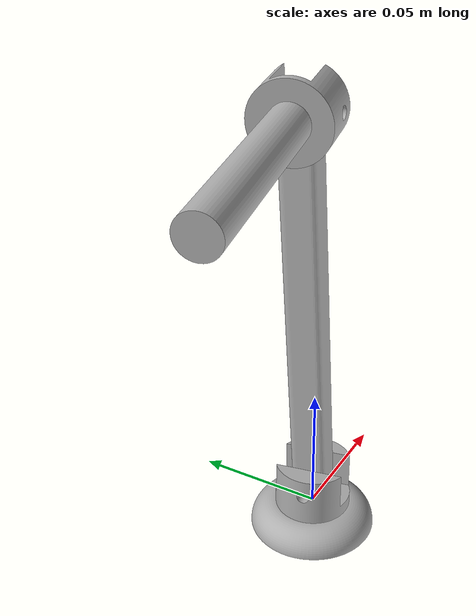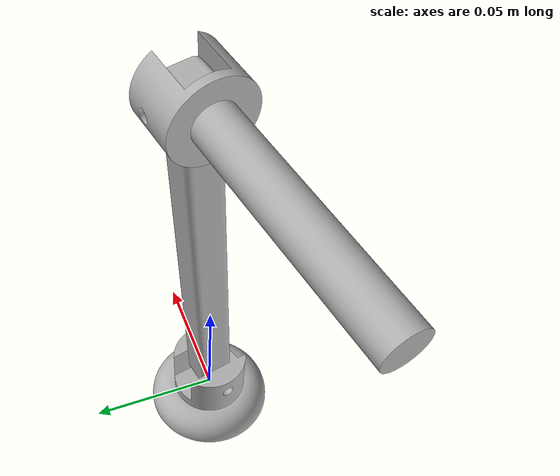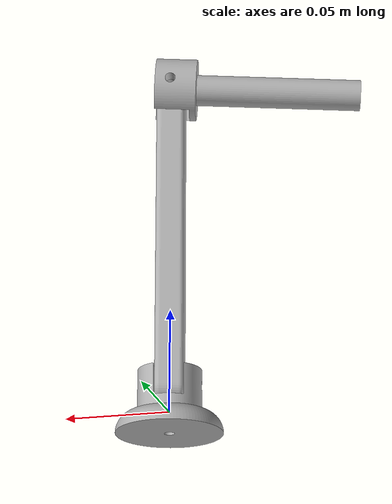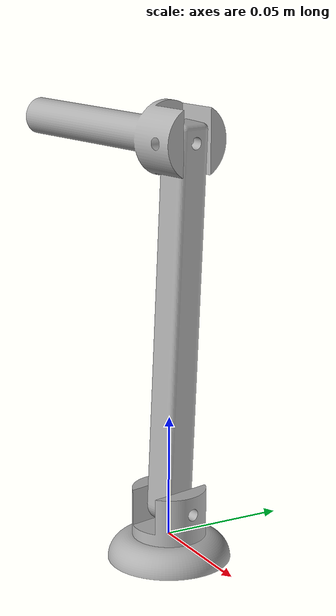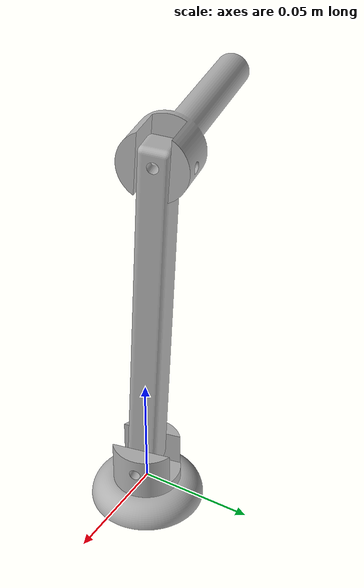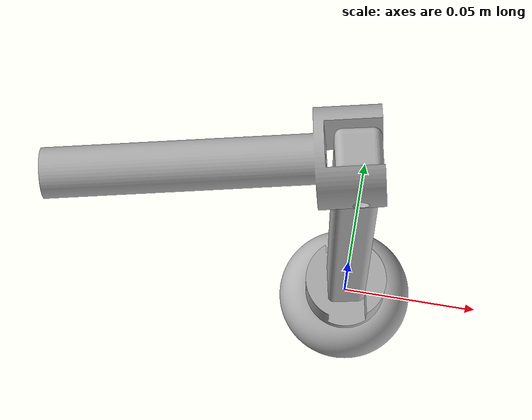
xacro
<?xml version="1.0" ?>
<robot name="Manipulator" xmlns:xacro="http://www.ros.org/wiki/xacro">

<xacro:include filename="$(find Manipulator_description)/urdf/materials.xacro" />
<xacro:include filename="$(find Manipulator_description)/urdf/Manipulator.trans" />
<xacro:include filename="$(find Manipulator_description)/urdf/Manipulator.gazebo" />
<link name="base_link">
  <inertial>
    <origin xyz="3.134077280433092e-15 0.0 -0.005501751357648892" rpy="0 0 0"/>
    <mass value="0.12849533381356237"/>
    <inertia ixx="1.9e-05" iyy="1.9e-05" izz="3.5e-05" ixy="0.0" iyz="0.0" ixz="-0.0"/>
  </inertial>
  <visual>
    <origin xyz="0 0 0" rpy="0 0 0"/>
    <geometry>
      <mesh filename="package://Manipulator_description/meshes/base_link.stl" scale="0.001 0.001 0.001"/>
    </geometry>
    <material name="silver"/>
  </visual>
  <collision>
    <origin xyz="0 0 0" rpy="0 0 0"/>
    <geometry>
      <mesh filename="package://Manipulator_description/meshes/base_link.stl" scale="0.001 0.001 0.001"/>
    </geometry>
  </collision>
</link>

<link name="Component2_1">
  <inertial>
    <origin xyz="3.3395508580724707e-15 1.0720185438044949e-14 0.0080163577312226" rpy="0 0 0"/>
    <mass value="0.0601598355917369"/>
    <inertia ixx="5e-06" iyy="7e-06" izz="8e-06" ixy="-0.0" iyz="-0.0" ixz="0.0"/>
  </inertial>
  <visual>
    <origin xyz="-0.0 -0.0 -0.0" rpy="0 0 0"/>
    <geometry>
      <mesh filename="package://Manipulator_description/meshes/Component2_1.stl" scale="0.001 0.001 0.001"/>
    </geometry>
    <material name="silver"/>
  </visual>
  <collision>
    <origin xyz="-0.0 -0.0 -0.0" rpy="0 0 0"/>
    <geometry>
      <mesh filename="package://Manipulator_description/meshes/Component2_1.stl" scale="0.001 0.001 0.001"/>
    </geometry>
  </collision>
</link>

<link name="Component3_1">
  <inertial>
    <origin xyz="0.00699999999999525 -0.07303387571781701 0.018887847457719705" rpy="0 0 0"/>
    <mass value="0.23740208011011288"/>
    <inertia ixx="0.000507" iyy="3.9e-05" izz="0.000476" ixy="-0.0" iyz="0.000121" ixz="0.0"/>
  </inertial>
  <visual>
    <origin xyz="0.007 0.0 -0.0125" rpy="0 0 0"/>
    <geometry>
      <mesh filename="package://Manipulator_description/meshes/Component3_1.stl" scale="0.001 0.001 0.001"/>
    </geometry>
    <material name="silver"/>
  </visual>
  <collision>
    <origin xyz="0.007 0.0 -0.0125" rpy="0 0 0"/>
    <geometry>
      <mesh filename="package://Manipulator_description/meshes/Component3_1.stl" scale="0.001 0.001 0.001"/>
    </geometry>
  </collision>
</link>

<link name="Component4_1">
  <inertial>
    <origin xyz="1.8322125465551748e-15 -0.033693574564269246 0.015944070322834895" rpy="0 0 0"/>
    <mass value="0.16509858750971396"/>
    <inertia ixx="0.000153" iyy="1.9e-05" izz="0.000142" ixy="-0.0" iyz="3.4e-05" ixz="0.0"/>
  </inertial>
  <visual>
    <origin xyz="0.0 0.146975 -0.04328" rpy="0 0 0"/>
    <geometry>
      <mesh filename="package://Manipulator_description/meshes/Component4_1.stl" scale="0.001 0.001 0.001"/>
    </geometry>
    <material name="silver"/>
  </visual>
  <collision>
    <origin xyz="0.0 0.146975 -0.04328" rpy="0 0 0"/>
    <geometry>
      <mesh filename="package://Manipulator_description/meshes/Component4_1.stl" scale="0.001 0.001 0.001"/>
    </geometry>
  </collision>
</link>

<joint name="Revolute 1" type="continuous">
  <origin xyz="0.0 0.0 0.0" rpy="0 0 0"/>
  <parent link="base_link"/>
  <child link="Component2_1"/>
  <axis xyz="0.0 0.0 1.0"/>
</joint>

<joint name="Revolute 2" type="continuous">
  <origin xyz="-0.007 -0.0 0.0125" rpy="0 0 0"/>
  <parent link="Component2_1"/>
  <child link="Component3_1"/>
  <axis xyz="1.0 -0.0 -0.0"/>
</joint>

<joint name="Revolute 3" type="continuous">
  <origin xyz="0.007 -0.146975 0.03078" rpy="0 0 0"/>
  <parent link="Component3_1"/>
  <child link="Component4_1"/>
  <axis xyz="-0.0 -0.25038 -0.968148"/>
</joint>

</robot>

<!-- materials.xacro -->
<robot name="Manipulator" xmlns:xacro="http://www.ros.org/wiki/xacro" >

<material name="silver">
  <color rgba="0.700 0.700 0.700 1.000"/>
</material>

</robot>

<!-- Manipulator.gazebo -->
<robot name="Manipulator" xmlns:xacro="http://www.ros.org/wiki/xacro" >

<xacro:property name="body_color" value="Gazebo/Silver" />

<gazebo>
  <plugin name="control" filename="libgazebo_ros_control.so"/>
</gazebo>
<gazebo reference="base_link">
  <material>${body_color}</material>
  <mu1>0.2</mu1>
  <mu2>0.2</mu2>
  <selfCollide>true</selfCollide>
  <gravity>true</gravity>
</gazebo>

<gazebo reference="Component2_1">
  <material>${body_color}</material>
  <mu1>0.2</mu1>
  <mu2>0.2</mu2>
  <selfCollide>true</selfCollide>
</gazebo>

<gazebo reference="Component3_1">
  <material>${body_color}</material>
  <mu1>0.2</mu1>
  <mu2>0.2</mu2>
  <selfCollide>true</selfCollide>
</gazebo>

<gazebo reference="Component4_1">
  <material>${body_color}</material>
  <mu1>0.2</mu1>
  <mu2>0.2</mu2>
  <selfCollide>true</selfCollide>
</gazebo>

</robot>
